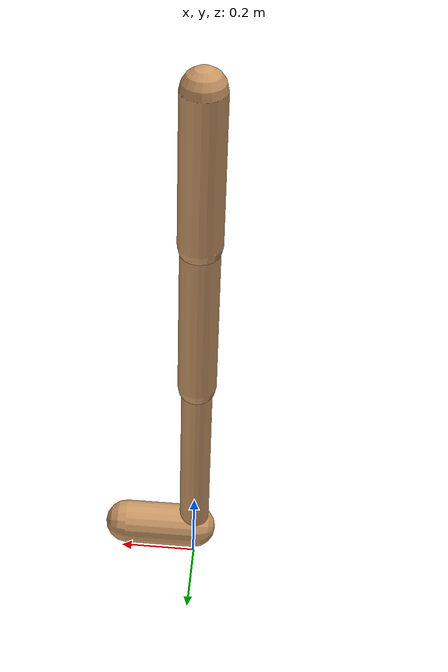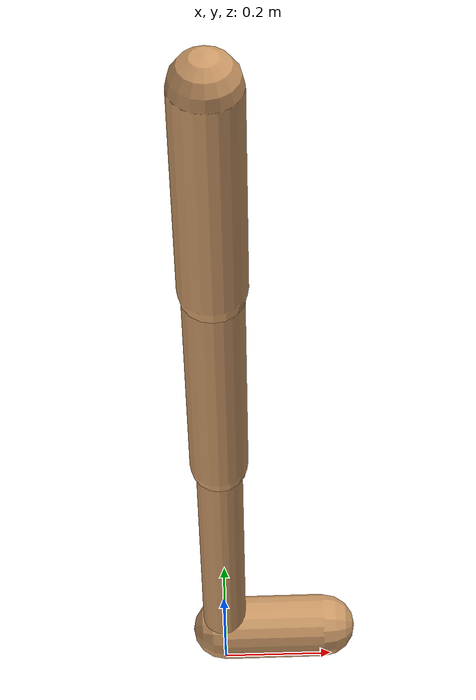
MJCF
<mujoco model="walker2d">
  <compiler angle="degree" coordinate="global" inertiafromgeom="true" />
  <default>
    <joint armature="0.01" damping=".1" limited="true" />
    <geom conaffinity="0" condim="3" contype="1" density="1000" friction="0.8 .1 .1" rgba="0.8 0.6 .4 1" />
  </default>
  <option integrator="RK4" timestep="0.002" />
  <worldbody>

    <body name="torso" pos="0 0 -0.03361734535067892">
      <joint armature="0" axis="1 0 0" damping="0" limited="false" name="ignorex" pos="0 0 0" stiffness="0" type="slide" />
      <joint armature="0" axis="0 0 1" damping="0" limited="false" name="ignorez" pos="0 0 0" ref="1.25" stiffness="0" type="slide" />
      <joint armature="0" axis="0 1 0" damping="0" limited="false" name="ignorey" pos="0 0 0" stiffness="0" type="hinge" />
      <geom fromto="0 0 1.45 0 0 1.05" name="torso_geom" size="0.05441882838471657" type="capsule" />
      <body name="thigh">
        <joint axis="0 -1 0" name="thigh_joint" pos="0 0 1.05" range="-150 0" type="hinge" />
        <geom fromto="0.0 0.0 1.05 0.0 0.0 0.6159240056924269" name="thigh_geom" size="0.04884706607375911" type="capsule" />
        <body name="leg" pos="0.0 0.0 0.015924005692426912">
          <joint axis="0 -1 0" name="leg_joint" pos="0 0 0.6" range="-150 0" type="hinge" />
          <geom fromto="0.0 0.0 0.6 0.0 0.0 0.11769333965825207" name="leg_geom" size="0.039077652859007286" type="capsule" />
          <body name="foot" pos="0.0 0.0 0.017693339658252066">
            <joint axis="0 -1 0" name="foot_joint" pos="0 0 0.1" range="-45 45" type="hinge" />
            <geom fromto="0.0 0.0 0.1 0.1839705538760521 0.0 0.1" name="foot_geom" size="0.058067003348185" type="capsule" />
          </body>
        </body>
      </body>

      <body name="thigh_left">
        <joint axis="0 -1 0" name="thigh_left_joint" pos="0 0 1.05" range="-150 0" type="hinge" />
        <geom fromto="0.0 0.0 1.05 0.0 0.0 0.6159240056924269" name="thigh_left_geom" rgba=".7 .3 .6 1" size="0.04884706607375911" type="capsule" />
        <body name="leg_left" pos="0.0 0.0 0.015924005692426912">
          <joint axis="0 -1 0" name="leg_left_joint" pos="0 0 0.6" range="-150 0" type="hinge" />
          <geom fromto="0.0 0.0 0.6 0.0 0.0 0.11769333965825207" name="leg_left_geom" rgba=".7 .3 .6 1" size="0.039077652859007286" type="capsule" />
          <body name="foot_left" pos="0.0 0.0 0.017693339658252066">
            <joint axis="0 -1 0" name="foot_left_joint" pos="0 0 0.1" range="-45 45" type="hinge" />
            <geom fromto="0.0 0.0 0.1 0.1839705538760521 0.0 0.1" name="foot_left_geom" rgba=".7 .3 .6 1" size="0.058067003348185" type="capsule" />
          </body>
        </body>
      </body>
    </body>
  </worldbody>
  <actuator>

    <motor ctrllimited="true" ctrlrange="-1.0 1.0" gear="100" joint="thigh_joint" />
    <motor ctrllimited="true" ctrlrange="-1.0 1.0" gear="100" joint="leg_joint" />
    <motor ctrllimited="true" ctrlrange="-1.0 1.0" gear="100" joint="foot_joint" />
    <motor ctrllimited="true" ctrlrange="-1.0 1.0" gear="100" joint="thigh_left_joint" />
    <motor ctrllimited="true" ctrlrange="-1.0 1.0" gear="100" joint="leg_left_joint" />
    <motor ctrllimited="true" ctrlrange="-1.0 1.0" gear="100" joint="foot_left_joint" />

  </actuator>
</mujoco>
